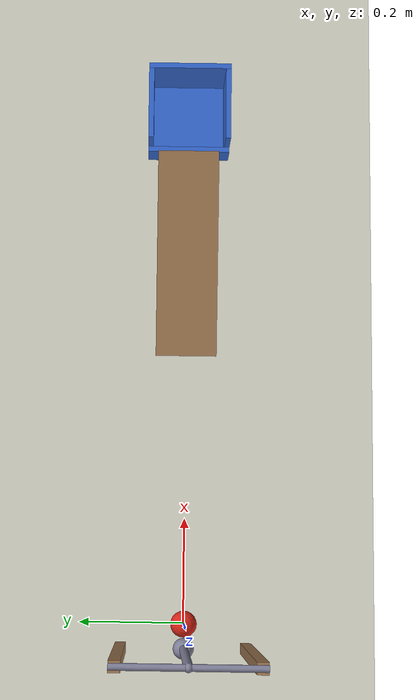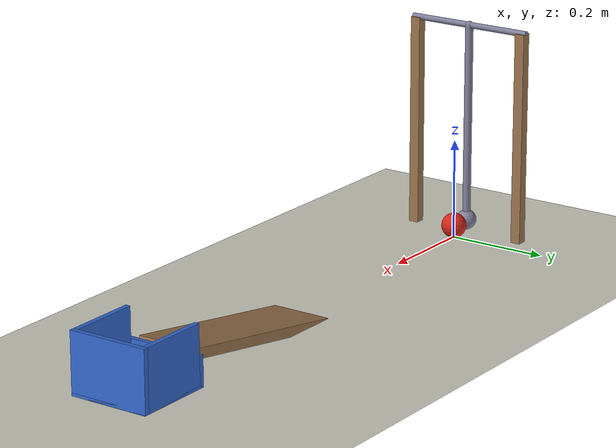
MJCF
<mujoco model="pendulum_ball_cup">
  <option timestep="0.002" gravity="0 0 -9.81"/>
  <visual>
    <global offwidth="1280" offheight="720"/>
  </visual>
  <asset>
    <material name="floormat" rgba="0.8 0.8 0.75 1"/>
    <material name="wood" rgba="0.6 0.45 0.3 1"/>
    <material name="metal" rgba="0.5 0.5 0.6 1"/>
    <material name="red" rgba="0.85 0.15 0.1 1"/>
    <material name="cupmat" rgba="0.2 0.4 0.8 1"/>
  </asset>
  <worldbody>
    <light name="sun" pos="0.5 -1 3" dir="0 0.3 -1" directional="true"/>
    <geom name="floor" type="plane" size="3 3 0.1" material="floormat" friction="1 0.005 0.0001"/>

    <body name="stand" pos="-0.046 0 0">
      <geom name="stand_post1" type="box" size="0.01 0.01 0.2125" pos="0 0.12 0.2125" material="wood" contype="0" conaffinity="0"/>
      <geom name="stand_post2" type="box" size="0.01 0.01 0.2125" pos="0 -0.12 0.2125" material="wood" contype="0" conaffinity="0"/>
      <geom name="stand_bar" type="cylinder" size="0.006 0.13" pos="0 0 0.425" euler="90 0 0" material="metal" contype="0" conaffinity="0"/>
    </body>

    <body name="pendulum" pos="-0.046 0 0.425">
      <joint name="pendulum_hinge" type="hinge" axis="0 1 0" pos="0 0 0" damping="0"/>
      <geom name="pendulum_arm" type="capsule" fromto="0 0 0 0 0 -0.38" size="0.008" mass="0.05" material="metal"/>
      <geom name="pendulum_bob" type="sphere" size="0.02" pos="0 0 -0.4" mass="0.5" material="metal"/>
    </body>

    <body name="ball" pos="0 0 0.025">
      <freejoint name="ball_free"/>
      <geom name="ball" type="sphere" size="0.025" mass="0.06" material="red" friction="1 0.005 0.0001"/>
    </body>

    <body name="ramp" pos="0.7216 0 0.0226">
      <geom name="ramp" type="box" size="0.2026 0.06 0.01" axisangle="0 1 0 -9.23" material="wood"/>
    </body>

    <body name="cup" pos="1 0 0">
      <geom name="cup_base" type="box" size="0.08 0.08 0.003" pos="0 0 0.003" material="cupmat" condim="6" friction="1 0.02 0.005"/>
      <geom name="cup_front" type="box" size="0.005 0.08 0.03" pos="-0.075 0 0.03" material="cupmat"/>
      <geom name="cup_back" type="box" size="0.005 0.08 0.06" pos="0.075 0 0.06" material="cupmat"/>
      <geom name="cup_left" type="box" size="0.07 0.005 0.06" pos="0 0.075 0.06" material="cupmat"/>
      <geom name="cup_right" type="box" size="0.07 0.005 0.06" pos="0 -0.075 0.06" material="cupmat"/>
    </body>
  </worldbody>

  <contact>
    <exclude name="no_default_strike" body1="pendulum" body2="ball"/>
    <pair name="strike" geom1="pendulum_bob" geom2="ball" condim="1"/>
  </contact>

  <keyframe>
    <key name="start" qpos="0.88 0 0 0.025 1 0 0 0" qvel="0 0 0 0 0 0 0"/>
  </keyframe>
</mujoco>
